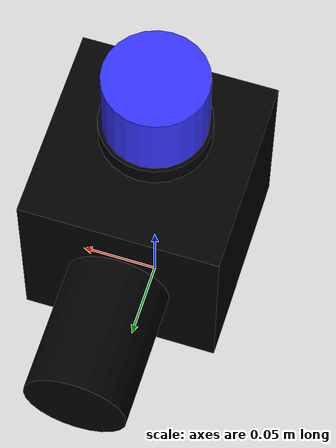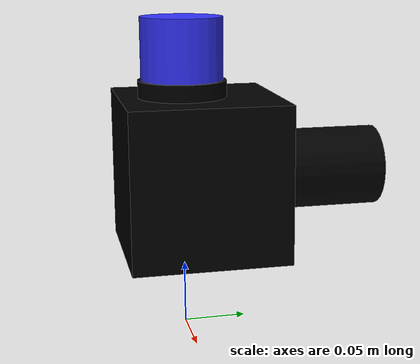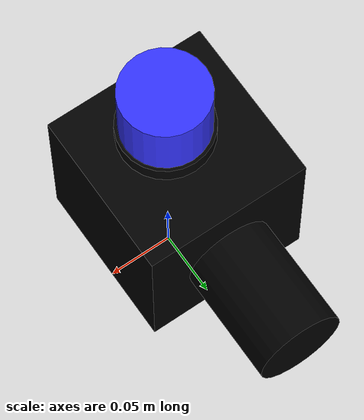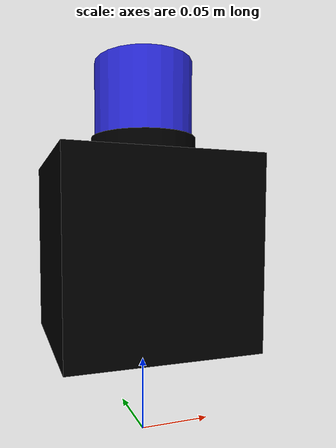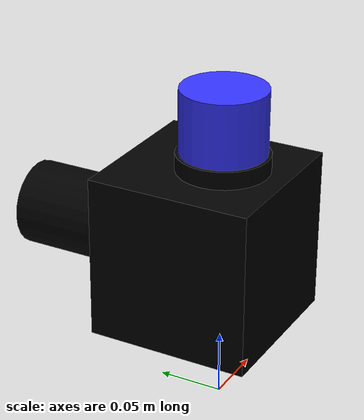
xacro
<?xml version="1.0"?>
<robot name="inspection_cell" xmlns:xacro="http://www.ros.org/wiki/xacro">

    <xacro:property name="name" value=""/>
    <xacro:property name="tf_prefix" value=""/>
    <xacro:property name="parent" value="world"/>

    <xacro:include filename="inspection_eoat_macro.urdf.xacro" />

    <link name="world"></link>

    <!-- Attach the inspection eoat -->
    <xacro:inspection_eoat
        name="${name}"
        tf_prefix="${tf_prefix}"
        parent="${parent}">
        <origin xyz="0 0 0.25" rpy="0 ${radians(180)} ${radians(90)}"/>
    </xacro:inspection_eoat>

</robot>

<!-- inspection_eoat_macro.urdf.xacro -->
<robot xmlns:xacro="http://www.ros.org/wiki/xacro" name="inspection_eoat">

    <material name="white">
        <color rgba="1 1 1 1"/>
    </material>

    <material name="orange">
        <color rgba="1 0.3 0.1 1"/>
    </material>

    <material name="blue">
        <color rgba="0.2 0.2 1 1"/>
    </material>

    <material name="black">
        <color rgba="0 0 0 1"/>
    </material>

    <xacro:macro name="inspection_eoat" params="
        name
        tf_prefix
        parent
        *origin">

        <link name="${tf_prefix}eoat_base_link">
            <visual>
                <origin xyz="0 0 0.024535"/>
                <geometry>
                    <cylinder radius="0.0325" length="0.04907"/>
                </geometry>
                <material name="blue"/>
            </visual>
            <collision>
                <origin xyz="0 0 0.024535"/>
                <geometry>
                    <cylinder radius="0.0325" length="0.04907"/>
                </geometry>
            </collision>
        </link>

        <link name="${tf_prefix}eoat_top_link">
            <visual>
                <origin xyz="0 0 0.024535"/>
                <geometry>
                    <cylinder radius="0.035" length="0.04907"/>
                </geometry>
                <material name="black"/>
            </visual>
            <collision>
                <origin xyz="0 0 0.024535"/>
                <geometry>
                    <cylinder radius="0.035" length="0.04907"/>
                </geometry>
            </collision>
        </link>

        <link name="${tf_prefix}eoat_camera_link">
            <visual>
                <origin xyz="0 0 0.080"/>
                <geometry>
                    <cylinder radius="0.0325" length="0.160"/>
                </geometry>
                <material name="black"/>
            </visual>
            <collision>
                <origin xyz="0 0 0.080"/>
                <geometry>
                    <cylinder radius="0.0325" length="0.160"/>
                </geometry>
            </collision>
        </link>

        <link name="${tf_prefix}eoat_body_link">
            <visual>
                <origin xyz="0 0 0.0625"/>
                <geometry>
                    <box size="0.125 0.125 0.125"/>
                </geometry>
                <material name="black"/>
            </visual>
            <collision>
                <origin xyz="0 0 0.080"/>
                <geometry>
                    <box size="0.125 0.125 0.125"/>
                </geometry>
            </collision>
        </link>

        <joint name="${tf_prefix}eoat_base_joint" type="fixed">
            <parent link="${parent}"/>
            <child link="${tf_prefix}eoat_base_link"/>
            <xacro:insert_block name="origin"/>
        </joint>

        <joint name="${tf_prefix}eoat_top_joint" type="fixed">
            <parent link="${tf_prefix}eoat_base_link"/>
            <child link="${tf_prefix}eoat_top_link"/>
            <origin xyz="0 0 0.04907" rpy="0 0 0"/>
        </joint>

        <joint name="${tf_prefix}eoat_body_joint" type="fixed">
            <parent link="${tf_prefix}eoat_base_link"/>
            <child link="${tf_prefix}eoat_body_link"/>
            <origin xyz="0.050 0 0.125" rpy="${radians(90)} ${radians(180)} ${radians(-90)}"/>
        </joint>

        <joint name="${tf_prefix}eoat_camera_joint" type="fixed">
            <parent link="${tf_prefix}eoat_base_link"/>
            <child link="${tf_prefix}eoat_camera_link"/>
            <origin xyz="0 0 0.125" rpy="${radians(90)} ${radians(180)} ${radians(-90)}"/>
        </joint>

    </xacro:macro>
</robot>
